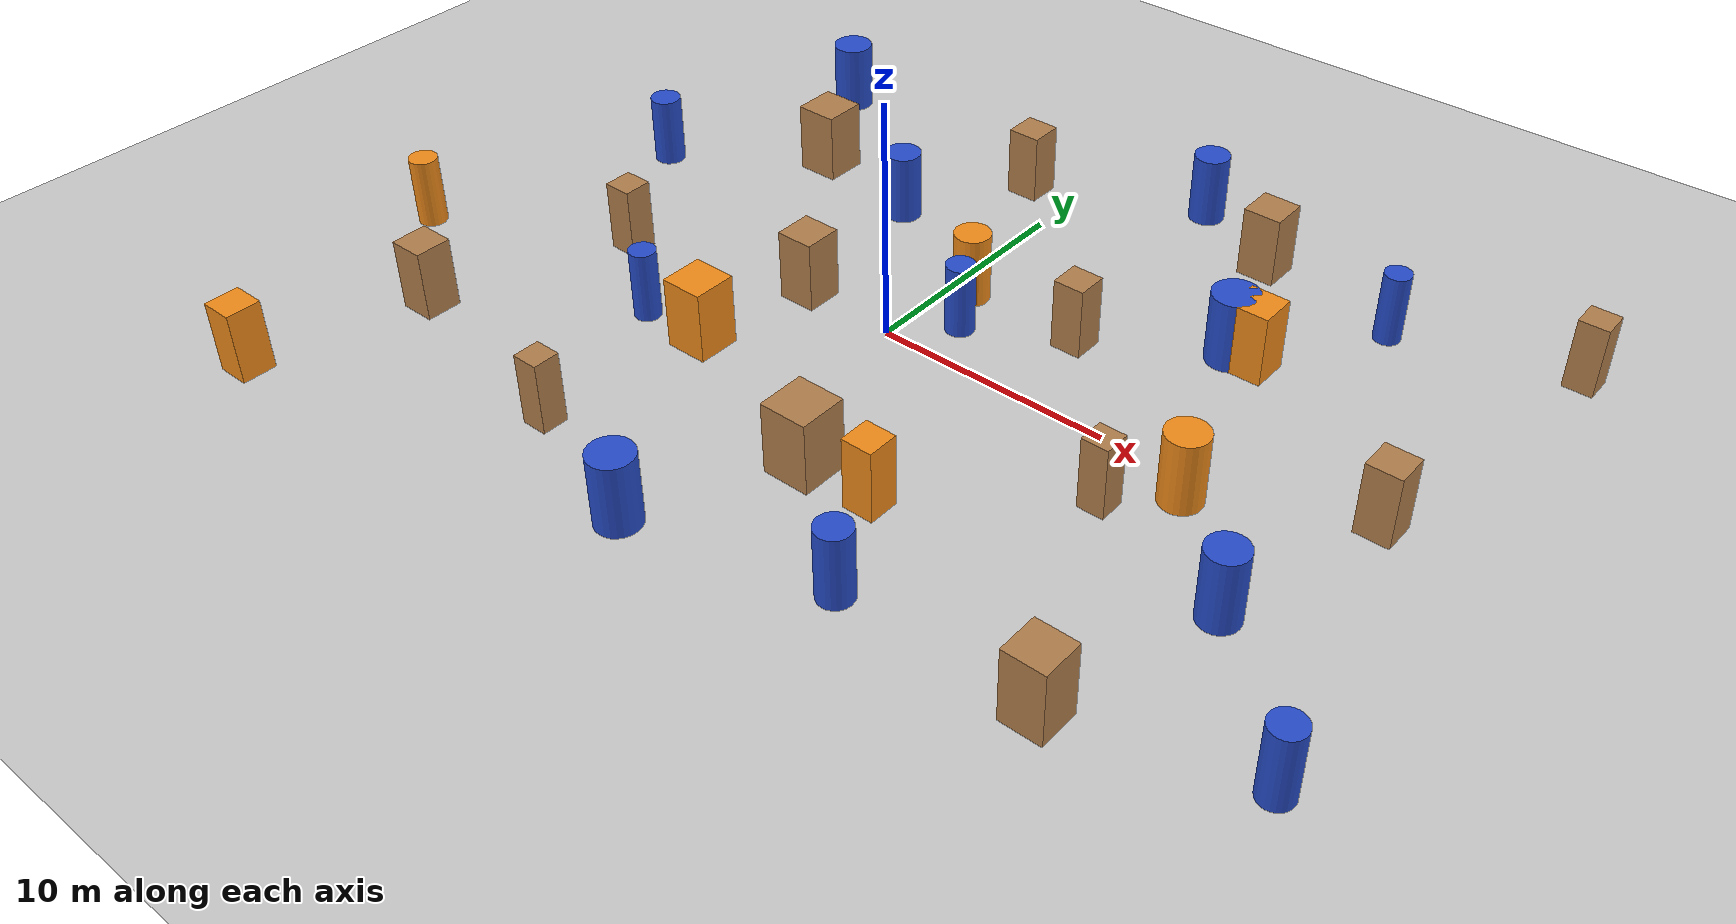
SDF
<sdf version='1.7'>
  <world name='default'>
    <light name='sun' type='directional'>
      <cast_shadows>1</cast_shadows>
      <pose>0 0 10 0 0 0</pose>
      <diffuse>0.8 0.8 0.8 1</diffuse>
      <specular>0.2 0.2 0.2 1</specular>
      <attenuation>
        <range>1000</range>
        <constant>0.9</constant>
        <linear>0.01</linear>
        <quadratic>0.001</quadratic>
      </attenuation>
      <direction>-0.5 0.1 -0.9</direction>
    </light>

    <model name='ground_plane'>
      <static>1</static>
      <link name='link'>
        <collision name='collision'>
          <geometry>
            <plane>
              <normal>0 0 1</normal>
              <size>50 50</size>
            </plane>
          </geometry>
          <surface>
            <friction>
              <ode>
                <mu>100</mu>
                <mu2>50</mu2>
              </ode>
            </friction>
          </surface>
        </collision>
        <visual name='visual'>
          <cast_shadows>0</cast_shadows>
          <geometry>
            <plane>
              <normal>0 0 1</normal>
              <size>50 50</size>
            </plane>
          </geometry>
          <material>
            <script>
              <uri>file://media/materials/scripts/gazebo.material</uri>
              <name>Gazebo/Grey</name>
            </script>
          </material>
        </visual>
      </link>
    </model>

    <gravity>0 0 -9.8</gravity>
    <magnetic_field>6e-06 2.3e-05 -4.2e-05</magnetic_field>
    <atmosphere type='adiabatic'/>
    <physics type='ode'>
      <max_step_size>0.001</max_step_size>
      <real_time_factor>1</real_time_factor>
      <real_time_update_rate>1000</real_time_update_rate>
    </physics>
    <scene>
      <ambient>0.4 0.4 0.4 1</ambient>
      <background>0.7 0.7 0.7 1</background>
      <shadows>1</shadows>
    </scene>

    <!-- Static square pillars. -->
    <model name='static_square_pillar_01'><pose>-15 -10 0 0 0 0</pose><static>1</static><link name='link'><collision name='collision'><pose>0 0 1.5 0 0 0</pose><geometry><box><size>1.5 1.5 3.0</size></box></geometry></collision><visual name='visual'><pose>0 0 1.5 0 0 0</pose><geometry><box><size>1.5 1.5 3.0</size></box></geometry><material><script><uri>file://media/materials/scripts/gazebo.material</uri><name>Gazebo/Wood</name></script></material></visual></link></model>
    <model name='static_square_pillar_02'><pose>-12 -2 0 0 0 0</pose><static>1</static><link name='link'><collision name='collision'><pose>0 0 1.5 0 0 0</pose><geometry><box><size>1.2 1.2 3.0</size></box></geometry></collision><visual name='visual'><pose>0 0 1.5 0 0 0</pose><geometry><box><size>1.2 1.2 3.0</size></box></geometry><material><script><uri>file://media/materials/scripts/gazebo.material</uri><name>Gazebo/Wood</name></script></material></visual></link></model>
    <model name='static_square_pillar_03'><pose>-10 8 0 0 0 0</pose><static>1</static><link name='link'><collision name='collision'><pose>0 0 1.5 0 0 0</pose><geometry><box><size>1.8 1.8 3.0</size></box></geometry></collision><visual name='visual'><pose>0 0 1.5 0 0 0</pose><geometry><box><size>1.8 1.8 3.0</size></box></geometry><material><script><uri>file://media/materials/scripts/gazebo.material</uri><name>Gazebo/Wood</name></script></material></visual></link></model>
    <model name='static_square_pillar_04'><pose>-6 -12 0 0 0 0</pose><static>1</static><link name='link'><collision name='collision'><pose>0 0 1.5 0 0 0</pose><geometry><box><size>1.1 1.1 3.0</size></box></geometry></collision><visual name='visual'><pose>0 0 1.5 0 0 0</pose><geometry><box><size>1.1 1.1 3.0</size></box></geometry><material><script><uri>file://media/materials/scripts/gazebo.material</uri><name>Gazebo/Wood</name></script></material></visual></link></model>
    <model name='static_square_pillar_05'><pose>-4 0 0 0 0 0</pose><static>1</static><link name='link'><collision name='collision'><pose>0 0 1.5 0 0 0</pose><geometry><box><size>1.6 1.6 3.0</size></box></geometry></collision><visual name='visual'><pose>0 0 1.5 0 0 0</pose><geometry><box><size>1.6 1.6 3.0</size></box></geometry><material><script><uri>file://media/materials/scripts/gazebo.material</uri><name>Gazebo/Wood</name></script></material></visual></link></model>
    <model name='static_square_pillar_06'><pose>-2 12 0 0 0 0</pose><static>1</static><link name='link'><collision name='collision'><pose>0 0 1.5 0 0 0</pose><geometry><box><size>1.4 1.4 3.0</size></box></geometry></collision><visual name='visual'><pose>0 0 1.5 0 0 0</pose><geometry><box><size>1.4 1.4 3.0</size></box></geometry><material><script><uri>file://media/materials/scripts/gazebo.material</uri><name>Gazebo/Wood</name></script></material></visual></link></model>
    <model name='static_square_pillar_07'><pose>3 -8 0 0 0 0</pose><static>1</static><link name='link'><collision name='collision'><pose>0 0 1.5 0 0 0</pose><geometry><box><size>2.0 2.0 3.0</size></box></geometry></collision><visual name='visual'><pose>0 0 1.5 0 0 0</pose><geometry><box><size>2.0 2.0 3.0</size></box></geometry><material><script><uri>file://media/materials/scripts/gazebo.material</uri><name>Gazebo/Wood</name></script></material></visual></link></model>
    <model name='static_square_pillar_08'><pose>6 4 0 0 0 0</pose><static>1</static><link name='link'><collision name='collision'><pose>0 0 1.5 0 0 0</pose><geometry><box><size>1.3 1.3 3.0</size></box></geometry></collision><visual name='visual'><pose>0 0 1.5 0 0 0</pose><geometry><box><size>1.3 1.3 3.0</size></box></geometry><material><script><uri>file://media/materials/scripts/gazebo.material</uri><name>Gazebo/Wood</name></script></material></visual></link></model>
    <model name='static_square_pillar_09'><pose>9 13 0 0 0 0</pose><static>1</static><link name='link'><collision name='collision'><pose>0 0 1.5 0 0 0</pose><geometry><box><size>1.6 1.6 3.0</size></box></geometry></collision><visual name='visual'><pose>0 0 1.5 0 0 0</pose><geometry><box><size>1.6 1.6 3.0</size></box></geometry><material><script><uri>file://media/materials/scripts/gazebo.material</uri><name>Gazebo/Wood</name></script></material></visual></link></model>
    <model name='static_square_pillar_10'><pose>12 -3 0 0 0 0</pose><static>1</static><link name='link'><collision name='collision'><pose>0 0 1.5 0 0 0</pose><geometry><box><size>1.1 1.1 3.0</size></box></geometry></collision><visual name='visual'><pose>0 0 1.5 0 0 0</pose><geometry><box><size>1.1 1.1 3.0</size></box></geometry><material><script><uri>file://media/materials/scripts/gazebo.material</uri><name>Gazebo/Wood</name></script></material></visual></link></model>
    <model name='static_square_pillar_11'><pose>16 -12 0 0 0 0</pose><static>1</static><link name='link'><collision name='collision'><pose>0 0 1.5 0 0 0</pose><geometry><box><size>1.7 1.7 3.0</size></box></geometry></collision><visual name='visual'><pose>0 0 1.5 0 0 0</pose><geometry><box><size>1.7 1.7 3.0</size></box></geometry><material><script><uri>file://media/materials/scripts/gazebo.material</uri><name>Gazebo/Wood</name></script></material></visual></link></model>
    <model name='static_square_pillar_12'><pose>20 2 0 0 0 0</pose><static>1</static><link name='link'><collision name='collision'><pose>0 0 1.5 0 0 0</pose><geometry><box><size>1.4 1.4 3.0</size></box></geometry></collision><visual name='visual'><pose>0 0 1.5 0 0 0</pose><geometry><box><size>1.4 1.4 3.0</size></box></geometry><material><script><uri>file://media/materials/scripts/gazebo.material</uri><name>Gazebo/Wood</name></script></material></visual></link></model>
    <model name='static_square_pillar_13'><pose>22 14 0 0 0 0</pose><static>1</static><link name='link'><collision name='collision'><pose>0 0 1.5 0 0 0</pose><geometry><box><size>1.2 1.2 3.0</size></box></geometry></collision><visual name='visual'><pose>0 0 1.5 0 0 0</pose><geometry><box><size>1.2 1.2 3.0</size></box></geometry><material><script><uri>file://media/materials/scripts/gazebo.material</uri><name>Gazebo/Wood</name></script></material></visual></link></model>

    <!-- Static cylindrical pillars. -->
    <model name='static_cylinder_pillar_01'><pose>-16 4 0 0 0 0</pose><static>1</static><link name='link'><collision name='collision'><pose>0 0 1.5 0 0 0</pose><geometry><cylinder><radius>0.65</radius><length>3.0</length></cylinder></geometry></collision><visual name='visual'><pose>0 0 1.5 0 0 0</pose><geometry><cylinder><radius>0.65</radius><length>3.0</length></cylinder></geometry><material><script><uri>file://media/materials/scripts/gazebo.material</uri><name>Gazebo/Blue</name></script></material></visual></link></model>
    <model name='static_cylinder_pillar_02'><pose>-13 13 0 0 0 0</pose><static>1</static><link name='link'><collision name='collision'><pose>0 0 1.5 0 0 0</pose><geometry><cylinder><radius>0.85</radius><length>3.0</length></cylinder></geometry></collision><visual name='visual'><pose>0 0 1.5 0 0 0</pose><geometry><cylinder><radius>0.85</radius><length>3.0</length></cylinder></geometry><material><script><uri>file://media/materials/scripts/gazebo.material</uri><name>Gazebo/Blue</name></script></material></visual></link></model>
    <model name='static_cylinder_pillar_03'><pose>-8 -5 0 0 0 0</pose><static>1</static><link name='link'><collision name='collision'><pose>0 0 1.5 0 0 0</pose><geometry><cylinder><radius>0.55</radius><length>3.0</length></cylinder></geometry></collision><visual name='visual'><pose>0 0 1.5 0 0 0</pose><geometry><cylinder><radius>0.55</radius><length>3.0</length></cylinder></geometry><material><script><uri>file://media/materials/scripts/gazebo.material</uri><name>Gazebo/Blue</name></script></material></visual></link></model>
    <model name='static_cylinder_pillar_04'><pose>-5 7 0 0 0 0</pose><static>1</static><link name='link'><collision name='collision'><pose>0 0 1.5 0 0 0</pose><geometry><cylinder><radius>0.75</radius><length>3.0</length></cylinder></geometry></collision><visual name='visual'><pose>0 0 1.5 0 0 0</pose><geometry><cylinder><radius>0.75</radius><length>3.0</length></cylinder></geometry><material><script><uri>file://media/materials/scripts/gazebo.material</uri><name>Gazebo/Blue</name></script></material></visual></link></model>
    <model name='static_cylinder_pillar_05'><pose>0 -14 0 0 0 0</pose><static>1</static><link name='link'><collision name='collision'><pose>0 0 1.5 0 0 0</pose><geometry><cylinder><radius>0.9</radius><length>3.0</length></cylinder></geometry></collision><visual name='visual'><pose>0 0 1.5 0 0 0</pose><geometry><cylinder><radius>0.9</radius><length>3.0</length></cylinder></geometry><material><script><uri>file://media/materials/scripts/gazebo.material</uri><name>Gazebo/Blue</name></script></material></visual></link></model>
    <model name='static_cylinder_pillar_06'><pose>2 2 0 0 0 0</pose><static>1</static><link name='link'><collision name='collision'><pose>0 0 1.5 0 0 0</pose><geometry><cylinder><radius>0.6</radius><length>3.0</length></cylinder></geometry></collision><visual name='visual'><pose>0 0 1.5 0 0 0</pose><geometry><cylinder><radius>0.6</radius><length>3.0</length></cylinder></geometry><material><script><uri>file://media/materials/scripts/gazebo.material</uri><name>Gazebo/Blue</name></script></material></visual></link></model>
    <model name='static_cylinder_pillar_07'><pose>5 15 0 0 0 0</pose><static>1</static><link name='link'><collision name='collision'><pose>0 0 1.5 0 0 0</pose><geometry><cylinder><radius>0.75</radius><length>3.0</length></cylinder></geometry></collision><visual name='visual'><pose>0 0 1.5 0 0 0</pose><geometry><cylinder><radius>0.75</radius><length>3.0</length></cylinder></geometry><material><script><uri>file://media/materials/scripts/gazebo.material</uri><name>Gazebo/Blue</name></script></material></visual></link></model>
    <model name='static_cylinder_pillar_08'><pose>8 -12 0 0 0 0</pose><static>1</static><link name='link'><collision name='collision'><pose>0 0 1.5 0 0 0</pose><geometry><cylinder><radius>0.7</radius><length>3.0</length></cylinder></geometry></collision><visual name='visual'><pose>0 0 1.5 0 0 0</pose><geometry><cylinder><radius>0.7</radius><length>3.0</length></cylinder></geometry><material><script><uri>file://media/materials/scripts/gazebo.material</uri><name>Gazebo/Blue</name></script></material></visual></link></model>
    <model name='static_cylinder_pillar_09'><pose>11 7 0 0 0 0</pose><static>1</static><link name='link'><collision name='collision'><pose>0 0 1.5 0 0 0</pose><geometry><cylinder><radius>0.95</radius><length>3.0</length></cylinder></geometry></collision><visual name='visual'><pose>0 0 1.5 0 0 0</pose><geometry><cylinder><radius>0.95</radius><length>3.0</length></cylinder></geometry><material><script><uri>file://media/materials/scripts/gazebo.material</uri><name>Gazebo/Blue</name></script></material></visual></link></model>
    <model name='static_cylinder_pillar_10'><pose>15 12 0 0 0 0</pose><static>1</static><link name='link'><collision name='collision'><pose>0 0 1.5 0 0 0</pose><geometry><cylinder><radius>0.55</radius><length>3.0</length></cylinder></geometry></collision><visual name='visual'><pose>0 0 1.5 0 0 0</pose><geometry><cylinder><radius>0.55</radius><length>3.0</length></cylinder></geometry><material><script><uri>file://media/materials/scripts/gazebo.material</uri><name>Gazebo/Blue</name></script></material></visual></link></model>
    <model name='static_cylinder_pillar_11'><pose>18 -5 0 0 0 0</pose><static>1</static><link name='link'><collision name='collision'><pose>0 0 1.5 0 0 0</pose><geometry><cylinder><radius>0.8</radius><length>3.0</length></cylinder></geometry></collision><visual name='visual'><pose>0 0 1.5 0 0 0</pose><geometry><cylinder><radius>0.8</radius><length>3.0</length></cylinder></geometry><material><script><uri>file://media/materials/scripts/gazebo.material</uri><name>Gazebo/Blue</name></script></material></visual></link></model>
    <model name='static_cylinder_pillar_12'><pose>23 -10 0 0 0 0</pose><static>1</static><link name='link'><collision name='collision'><pose>0 0 1.5 0 0 0</pose><geometry><cylinder><radius>0.65</radius><length>3.0</length></cylinder></geometry></collision><visual name='visual'><pose>0 0 1.5 0 0 0</pose><geometry><cylinder><radius>0.65</radius><length>3.0</length></cylinder></geometry><material><script><uri>file://media/materials/scripts/gazebo.material</uri><name>Gazebo/Blue</name></script></material></visual></link></model>

    <!-- Dynamic pillars publish true pose and twist through smoothPillarPathPlugin. -->
    <model name='dynamic_square_pillar_01'><pose>-17 -17 0 0 0 0</pose><static>0</static><link name='link'><gravity>0</gravity><inertial><mass>10</mass><inertia><ixx>1</ixx><iyy>1</iyy><izz>1</izz><ixy>0</ixy><ixz>0</ixz><iyz>0</iyz></inertia></inertial><collision name='collision'><pose>0 0 1.5 0 0 0</pose><geometry><box><size>1.4 1.4 3.0</size></box></geometry></collision><visual name='visual'><pose>0 0 1.5 0 0 0</pose><geometry><box><size>1.4 1.4 3.0</size></box></geometry><material><script><uri>file://media/materials/scripts/gazebo.material</uri><name>Gazebo/Orange</name></script></material></visual></link><plugin name='smooth_motion' filename='libsmoothPillarPathPlugin.so'><loop>false</loop><orientation>false</orientation><velocity_min>0.45</velocity_min><velocity_max>1.60</velocity_max><speed_period>6.0</speed_period><phase>0.0</phase><obstacle_type>square</obstacle_type><size>1.4</size><height>3.0</height><path><waypoint>-17 -17 0</waypoint><waypoint>-6 -17 0</waypoint></path></plugin></model>
    <model name='dynamic_cylinder_pillar_01'><pose>-20 -6 0 0 0 0</pose><static>0</static><link name='link'><gravity>0</gravity><inertial><mass>10</mass><inertia><ixx>1</ixx><iyy>1</iyy><izz>1</izz><ixy>0</ixy><ixz>0</ixz><iyz>0</iyz></inertia></inertial><collision name='collision'><pose>0 0 1.5 0 0 0</pose><geometry><cylinder><radius>0.6</radius><length>3.0</length></cylinder></geometry></collision><visual name='visual'><pose>0 0 1.5 0 0 0</pose><geometry><cylinder><radius>0.6</radius><length>3.0</length></cylinder></geometry><material><script><uri>file://media/materials/scripts/gazebo.material</uri><name>Gazebo/Orange</name></script></material></visual></link><plugin name='smooth_motion' filename='libsmoothPillarPathPlugin.so'><loop>false</loop><orientation>false</orientation><velocity_min>0.45</velocity_min><velocity_max>1.50</velocity_max><speed_period>7.0</speed_period><phase>1.0</phase><obstacle_type>cylinder</obstacle_type><size>1.2</size><height>3.0</height><path><waypoint>-20 -6 0</waypoint><waypoint>-20 6 0</waypoint></path></plugin></model>
    <model name='dynamic_square_pillar_02'><pose>-5 -5 0 0 0 0</pose><static>0</static><link name='link'><gravity>0</gravity><inertial><mass>10</mass><inertia><ixx>1</ixx><iyy>1</iyy><izz>1</izz><ixy>0</ixy><ixz>0</ixz><iyz>0</iyz></inertia></inertial><collision name='collision'><pose>0 0 1.5 0 0 0</pose><geometry><box><size>1.8 1.8 3.0</size></box></geometry></collision><visual name='visual'><pose>0 0 1.5 0 0 0</pose><geometry><box><size>1.8 1.8 3.0</size></box></geometry><material><script><uri>file://media/materials/scripts/gazebo.material</uri><name>Gazebo/Orange</name></script></material></visual></link><plugin name='smooth_motion' filename='libsmoothPillarPathPlugin.so'><loop>false</loop><orientation>false</orientation><velocity_min>0.55</velocity_min><velocity_max>2.00</velocity_max><speed_period>6.5</speed_period><phase>2.0</phase><obstacle_type>square</obstacle_type><size>1.8</size><height>3.0</height><path><waypoint>-5 -5 0</waypoint><waypoint>7 -5 0</waypoint></path></plugin></model>
    <model name='dynamic_cylinder_pillar_02'><pose>1 4 0 0 0 0</pose><static>0</static><link name='link'><gravity>0</gravity><inertial><mass>10</mass><inertia><ixx>1</ixx><iyy>1</iyy><izz>1</izz><ixy>0</ixy><ixz>0</ixz><iyz>0</iyz></inertia></inertial><collision name='collision'><pose>0 0 1.5 0 0 0</pose><geometry><cylinder><radius>0.75</radius><length>3.0</length></cylinder></geometry></collision><visual name='visual'><pose>0 0 1.5 0 0 0</pose><geometry><cylinder><radius>0.75</radius><length>3.0</length></cylinder></geometry><material><script><uri>file://media/materials/scripts/gazebo.material</uri><name>Gazebo/Orange</name></script></material></visual></link><plugin name='smooth_motion' filename='libsmoothPillarPathPlugin.so'><loop>false</loop><orientation>false</orientation><velocity_min>0.50</velocity_min><velocity_max>1.80</velocity_max><speed_period>7.5</speed_period><phase>3.0</phase><obstacle_type>cylinder</obstacle_type><size>1.5</size><height>3.0</height><path><waypoint>1 4 0</waypoint><waypoint>1 16 0</waypoint></path></plugin></model>
    <model name='dynamic_square_pillar_03'><pose>6 -8 0 0 0 0</pose><static>0</static><link name='link'><gravity>0</gravity><inertial><mass>10</mass><inertia><ixx>1</ixx><iyy>1</iyy><izz>1</izz><ixy>0</ixy><ixz>0</ixz><iyz>0</iyz></inertia></inertial><collision name='collision'><pose>0 0 1.5 0 0 0</pose><geometry><box><size>1.3 1.3 3.0</size></box></geometry></collision><visual name='visual'><pose>0 0 1.5 0 0 0</pose><geometry><box><size>1.3 1.3 3.0</size></box></geometry><material><script><uri>file://media/materials/scripts/gazebo.material</uri><name>Gazebo/Orange</name></script></material></visual></link><plugin name='smooth_motion' filename='libsmoothPillarPathPlugin.so'><loop>false</loop><orientation>false</orientation><velocity_min>0.55</velocity_min><velocity_max>1.90</velocity_max><speed_period>5.8</speed_period><phase>4.0</phase><obstacle_type>square</obstacle_type><size>1.3</size><height>3.0</height><path><waypoint>6 -8 0</waypoint><waypoint>17 -8 0</waypoint></path></plugin></model>
    <model name='dynamic_cylinder_pillar_03'><pose>14 -1 0 0 0 0</pose><static>0</static><link name='link'><gravity>0</gravity><inertial><mass>10</mass><inertia><ixx>1</ixx><iyy>1</iyy><izz>1</izz><ixy>0</ixy><ixz>0</ixz><iyz>0</iyz></inertia></inertial><collision name='collision'><pose>0 0 1.5 0 0 0</pose><geometry><cylinder><radius>0.85</radius><length>3.0</length></cylinder></geometry></collision><visual name='visual'><pose>0 0 1.5 0 0 0</pose><geometry><cylinder><radius>0.85</radius><length>3.0</length></cylinder></geometry><material><script><uri>file://media/materials/scripts/gazebo.material</uri><name>Gazebo/Orange</name></script></material></visual></link><plugin name='smooth_motion' filename='libsmoothPillarPathPlugin.so'><loop>false</loop><orientation>false</orientation><velocity_min>0.45</velocity_min><velocity_max>1.70</velocity_max><speed_period>7.2</speed_period><phase>5.0</phase><obstacle_type>cylinder</obstacle_type><size>1.7</size><height>3.0</height><path><waypoint>14 -1 0</waypoint><waypoint>14 10 0</waypoint></path></plugin></model>
    <model name='dynamic_square_pillar_04'><pose>12 7 0 0 0 0</pose><static>0</static><link name='link'><gravity>0</gravity><inertial><mass>10</mass><inertia><ixx>1</ixx><iyy>1</iyy><izz>1</izz><ixy>0</ixy><ixz>0</ixz><iyz>0</iyz></inertia></inertial><collision name='collision'><pose>0 0 1.5 0 0 0</pose><geometry><box><size>1.6 1.6 3.0</size></box></geometry></collision><visual name='visual'><pose>0 0 1.5 0 0 0</pose><geometry><box><size>1.6 1.6 3.0</size></box></geometry><material><script><uri>file://media/materials/scripts/gazebo.material</uri><name>Gazebo/Orange</name></script></material></visual></link><plugin name='smooth_motion' filename='libsmoothPillarPathPlugin.so'><loop>false</loop><orientation>false</orientation><velocity_min>0.50</velocity_min><velocity_max>1.80</velocity_max><speed_period>8.0</speed_period><phase>6.0</phase><obstacle_type>square</obstacle_type><size>1.6</size><height>3.0</height><path><waypoint>12 7 0</waypoint><waypoint>24 7 0</waypoint></path></plugin></model>
  </world>
</sdf>
